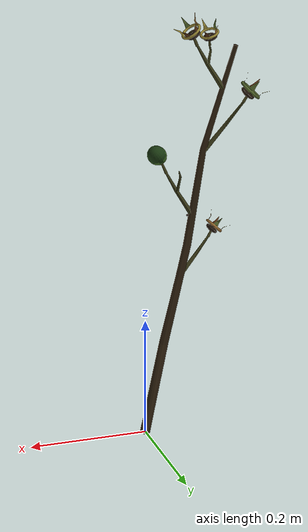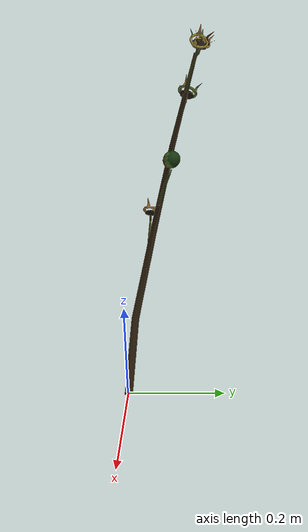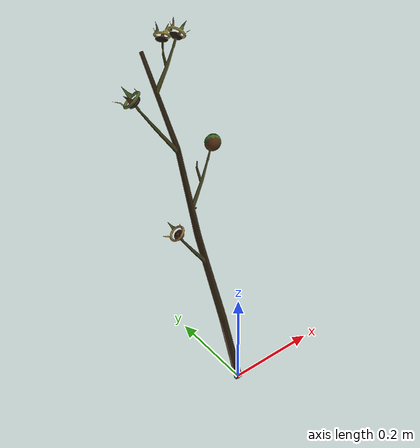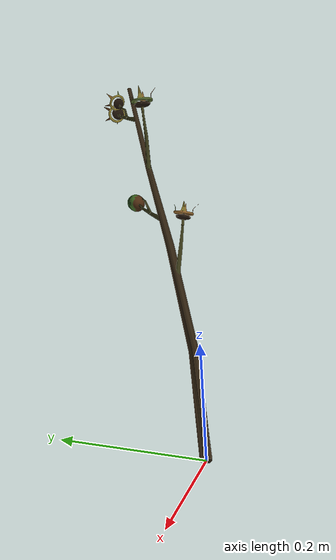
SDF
<?xml version="1.0"?>
<sdf version="1.7">
  <model name="branch_variant_B_mixed_green_01">
    <static>true</static>
    <link name="branch_variant_B_mixed_green_01_link">
      <visual name="branch_variant_B_mixed_green_01_visual">
        <geometry><mesh><uri>model://branch_variant_B_mixed_green_01/meshes/branch_variant_B_mixed_green_01.dae</uri></mesh></geometry>
      </visual>
      <collision name="branch_variant_B_mixed_green_01_stem_collision">
        <pose>0 0 0.33000 0 0 0</pose>
        <geometry><cylinder><radius>0.018</radius><length>0.66000</length></cylinder></geometry>
      </collision>
    </link>
  </model>
</sdf>
